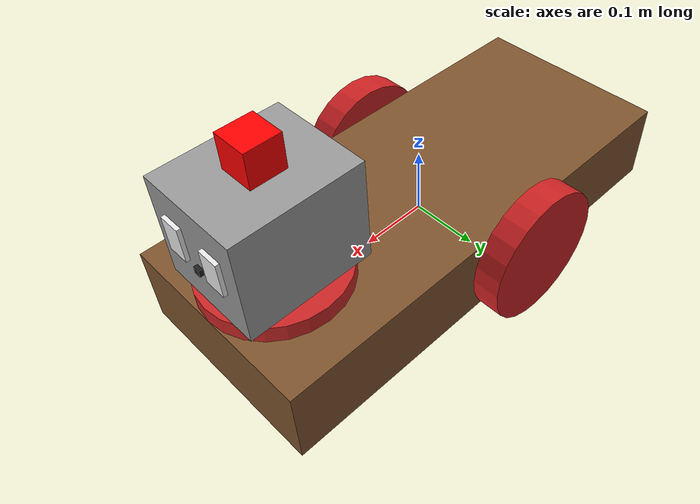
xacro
<?xml version="1.0"?>
<robot xmlns:xacro="http://www.ros.org/wiki/xacro" name="robot_xacro">
<xacro:include filename="$(find exp_assignment2)/urdf/robot.gazebo"/>

	<xacro:property name="length_wheel" value="0.04" />
	<xacro:property name="radius_wheel" value="0.1" />

	<xacro:macro name="default_inertial" params="mass">
               <inertial>
                       <mass value="${mass}" />
                       <origin rpy="0 1.5707 1.5707" xyz="0 0 0"/>
                       <inertia ixx="0.000526666666667" ixy="0" ixz="0" iyy="0.000526666666667" iyz="0" izz="0.001"/>
               </inertial>
	</xacro:macro>

  <xacro:macro name="wheel_geometry">
		<geometry>
       			<cylinder length="${length_wheel}" radius="${radius_wheel}"/>
     	</geometry>
	</xacro:macro>

  <!-- Addionatal part-->
  <xacro:macro name="eyes_geometry">
		<geometry>
       			<box size="0.01 0.03 0.05"/>
    </geometry>
	</xacro:macro>

  <material name="black">
    <color rgba="0.0 0.0 0.0 1.0"/>
  </material>
  <material name="blue">
    <color rgba="0.203125 0.23828125 0.28515625 1.0"/>
  </material>
  <material name="green">
    <color rgba="0.0 0.8 0.0 1.0"/>
  </material>
  <material name="grey">
    <color rgba="0.2 0.2 0.2 1.0"/>
  </material>
  <material name="orange">
    <color rgba="1.0 0.423529411765 0.0392156862745 1.0"/>
  </material>
  <material name="brown">
    <color rgba="0.870588235294 0.811764705882 0.764705882353 1.0"/>
  </material>
  <material name="red">
    <color rgba="0.80078125 0.12890625 0.1328125 1.0"/>
  </material>
  <material name="white">
    <color rgba="1.0 1.0 1.0 1.0"/>
  </material>

	  <link name="link_chassis">
    <!-- pose and inertial -->
    <pose>0 0 0.1 0 0 0</pose>
    <inertial>
      <mass value="5"/>
      <origin rpy="0 0 0" xyz="0 0 0.1"/>
      <inertia ixx="0.0395416666667" ixy="0" ixz="0" iyy="0.106208333333" iyz="0" izz="0.106208333333"/>
    </inertial>
    <!-- body -->
    <collision name="collision_chassis">
      <geometry>
        <box size="0.7 0.3 0.12"/>
      </geometry>
    </collision>
    <visual>
      <origin rpy="0 0 0" xyz="0 0 0"/>
      <geometry>
        <box size="0.7 0.3 0.12"/>
      </geometry>
      <material name="GoldBrown"/>
    </visual>
    <!-- caster front -->
    <collision name="caster_front_collision">
      <origin rpy=" 0 0 0" xyz="0.35 0 -0.05"/>
      <geometry>
        <sphere radius="0.05"/>
      </geometry>
    </collision>
    <visual name="caster_front_visual">
      <origin rpy=" 0 0 0" xyz="0.2 0 -0.05"/>
      <geometry>
        <sphere radius="0.05"/>
      </geometry>
    </visual>
    </link>

    <!-- Neck link -->
	  <link name="neck_link">
    <!-- pose and inertial -->
    <inertial>
      <mass value="0.2" />
      <origin rpy="0 0 0" xyz="0 0 0"/>
      <inertia ixx="0.000542" ixy="0" ixz="0" iyy="0.000542" iyz="0" izz="0.001"/>
    </inertial>
    <!-- body -->
    <collision name="collision_neck">
      <geometry>
        <cylinder length="${0.3/6}" radius="0.1"/>
      </geometry>
    </collision>
    <visual>
      <origin rpy="0 0 0" xyz="0 0 0"/>
      <geometry>
        <cylinder length="${0.3/6}" radius="0.1"/>
      </geometry>
      <material name="Red"/>
    </visual>
    </link>

    <!-- Joint Neck -->
    <joint name="neck_joint" type="fixed">
	    <axis xyz="0 1 0" />
	    <origin xyz="0.25 0 0.06" rpy="0 0 0"/>
	    <parent link="link_chassis"/>
	    <child link="neck_link"/>
	  </joint>

    <!-- Head link -->
	  <link name="head_link">
    <inertial>
      <mass value="0.2" />
      <origin rpy="0 0 0" xyz="0 0 0"/>
      <inertia ixx="0.00075" ixy="0" ixz="0" iyy="0.000915" iyz="0" izz="0.000915"/>
    </inertial>
    <!-- body -->
    <collision name="collision_head">
      <geometry>
        <box size="0.18 0.15 0.15" />
      </geometry>
    </collision>
    <visual>
      <origin rpy="0 0 0" xyz="0 0 0"/>
      <geometry>
        <box size="0.18 0.15 0.15"/>
      </geometry>
      <material name="Grey"/>
    </visual>

    <!-- Eyes -->

    <collision name = "left_eye_collision">
      <origin rpy="0 0 0" xyz="0.0905 -0.035 0.01" />
      <xacro:eyes_geometry />
    </collision>
    <visual name="left_eye_visual">
      <origin rpy="0 0 0" xyz="0.0905 -0.035 0.01" />
      <xacro:eyes_geometry />
      <material name="White"/>
    </visual>
    <collision name = "right_eye_collision">
      <origin rpy="0 0 0" xyz="0.0905 0.035 0.01" />
      <xacro:eyes_geometry />
    </collision>
    <visual name="right_eye_visual">
      <origin rpy="0 0 0" xyz="0.0905 0.035 0.01" />
      <xacro:eyes_geometry />
      <material name="White"/>
    </visual>

    <!-- Nose -->
    <collision name = "nose_collision">
      <origin rpy="0 0 0" xyz="0.0905 0 -0.015" />
      <geometry>
      <box size="0.01 0.01 0.01" />
      </geometry>
    </collision>
    <visual name="nose_visual">
      <origin rpy="0 0 0" xyz="0.0905 0 -0.015" />
      <geometry>
      <box size="0.01 0.01 0.01" />
      </geometry>
      <material name="Black"/>
    </visual>
    </link>

    <!-- Joint Head -->
    <joint name="head_joint" type="revolute">
	    <axis xyz="0 0 1" />
	    <origin xyz="0 0 0.1" rpy="0 0 0"/>
	    <parent link="neck_link"/>
	    <child link="head_link"/>
      <limit lower="-0.785" upper="0.785" effort="10" velocity="3" />
	  </joint>

   <link name="link_right_wheel">
    <xacro:default_inertial mass="0.2"/>
    <collision name="link_right_wheel_collision">
      <origin rpy="0 1.5707 1.5707" xyz="0 0 0"/>
      <xacro:wheel_geometry />
    </collision>
    <visual name="link_right_wheel_visual">
      <origin rpy="0 1.5707 1.5707" xyz="0 0 0"/>
      <xacro:wheel_geometry />
      <material name="red"/>
    </visual>
  </link>

   <link name="link_left_wheel">
    <xacro:default_inertial mass="0.2"/>
    <collision name="link_left_wheel_collision">
      <origin rpy="0 1.5707 1.5707" xyz="0 0 0"/>
      <xacro:wheel_geometry />
    </collision>
    <visual name="link_left_wheel_visual">
      <origin rpy="0 1.5707 1.5707" xyz="0 0 0"/>
      <xacro:wheel_geometry />
      <material name="red"/>
    </visual>
  </link>

  <joint name="joint_right_wheel" type="continuous">
    <origin rpy="0 0 0" xyz="-0.05 0.17 0"/>
    <child link="link_right_wheel"/>
    <parent link="link_chassis"/>
    <axis rpy="0 0 0" xyz="0 1 0"/>
    <limit effort="10000" velocity="1000"/>
    <joint_properties damping="1.0" friction="1.0"/>
  </joint>

  <joint name="joint_left_wheel" type="continuous">
    <origin rpy="0 0 0" xyz="-0.05 -0.17 0"/>
    <child link="link_left_wheel"/>
    <parent link="link_chassis"/>
    <axis rpy="0 0 0" xyz="0 1 0"/>
    <limit effort="10000" velocity="1000"/>
    <joint_properties damping="1.0" friction="1.0"/>
  </joint>

   <link name="camera_link">
	    <collision>
	      <origin xyz="0 0 0.025" rpy="0 0 0"/>
	      <geometry>
		<box size="0.05 0.05 0.05"/>
	      </geometry>
	    </collision>
	    <visual>
	      <origin xyz="0 0 0.025" rpy="0 0 0"/>
	      <geometry>
		<box size="0.05 0.05 0.05"/>
	      </geometry>
	      <material name="red">
		<color rgba="1 0 0 1"/>
	      </material>
	    </visual>
	    <inertial>
	      <mass value="1e-5" />
	      <origin xyz="0 0 0" rpy="0 0 0"/>
	      <inertia ixx="1e-6" ixy="0" ixz="0" iyy="1e-6" iyz="0" izz="1e-6" />
	    </inertial>
  </link>

  <joint name="camera_joint" type="fixed">
	    <axis xyz="0 1 0" />
	    <origin xyz="0 0 0.075" rpy="0 0 0"/>
	    <parent link="head_link"/>
	    <child link="camera_link"/>
	 </joint>

<!-- Set trasmission for the head -->

<transmission name="head_joint_trans">
	<type>transmission_interface/SimpleTransmission</type>
	<joint name="head_joint">
		<hardwareInterface>hardware_interface/EffortJointInterface</hardwareInterface>
	</joint>
	<actuator name="motor1">
		<hardwareInterface>hardware_interface/EffortJointInterface</hardwareInterface>
		<mechanicalInterface>1</mechanicalInterface>
	</actuator>
</transmission>

</robot>
